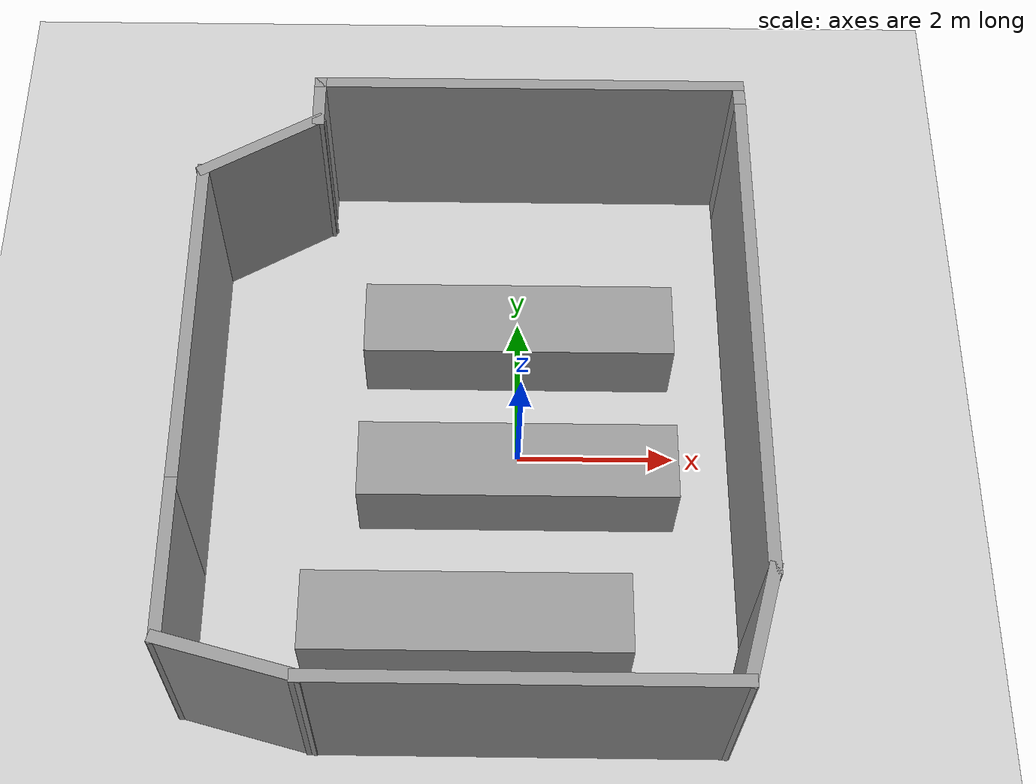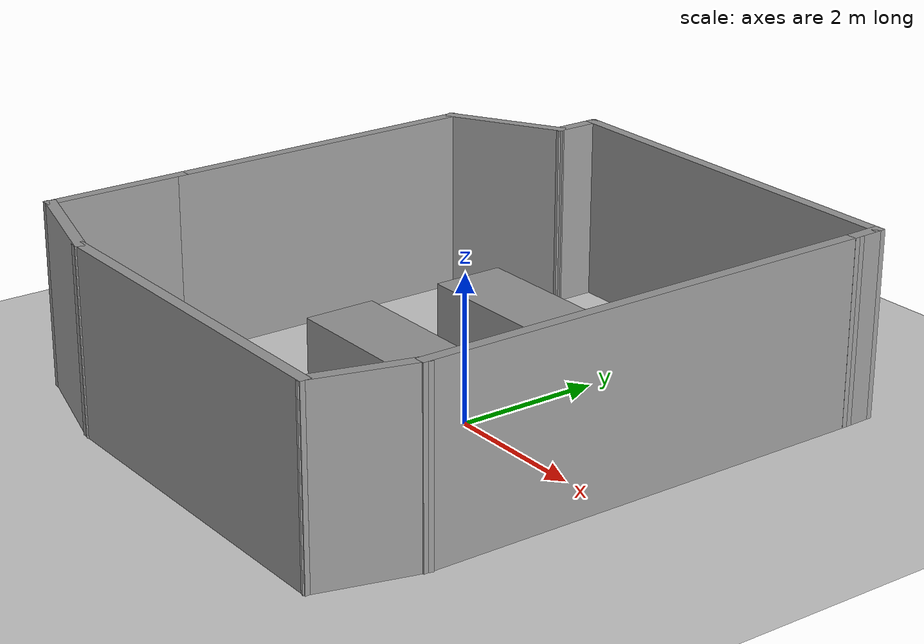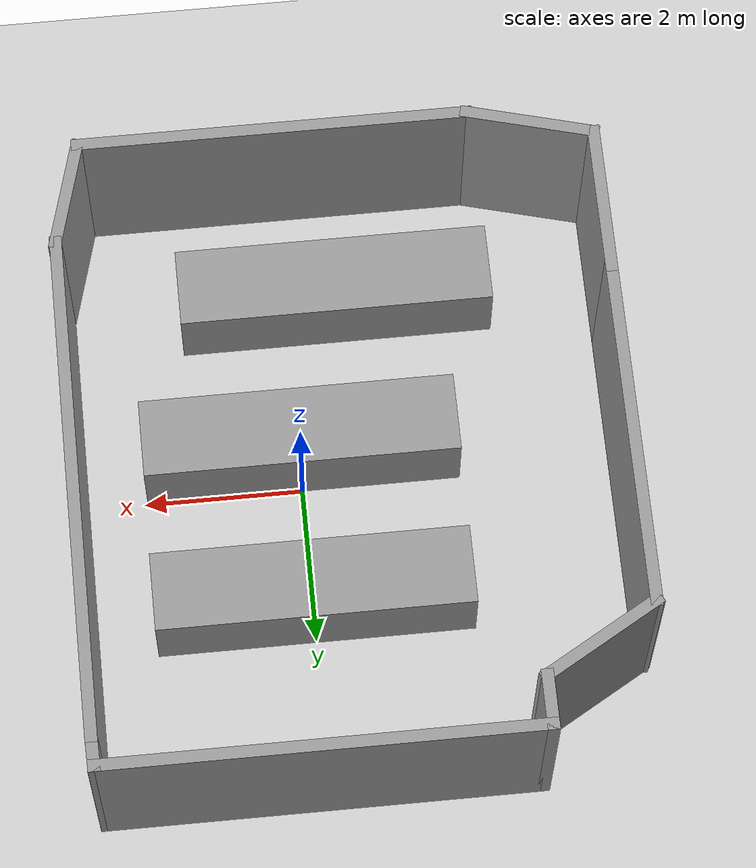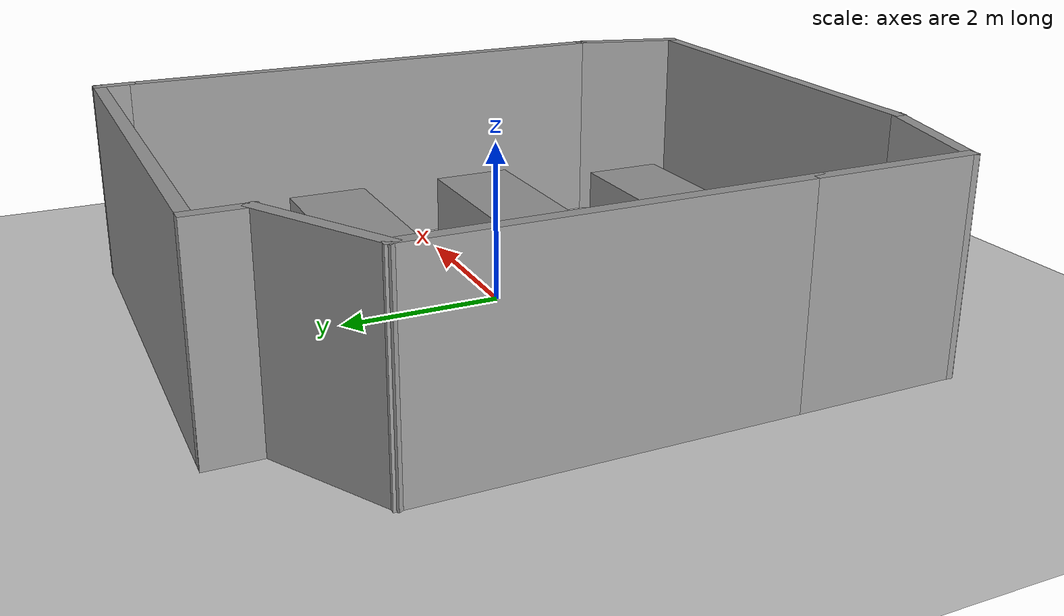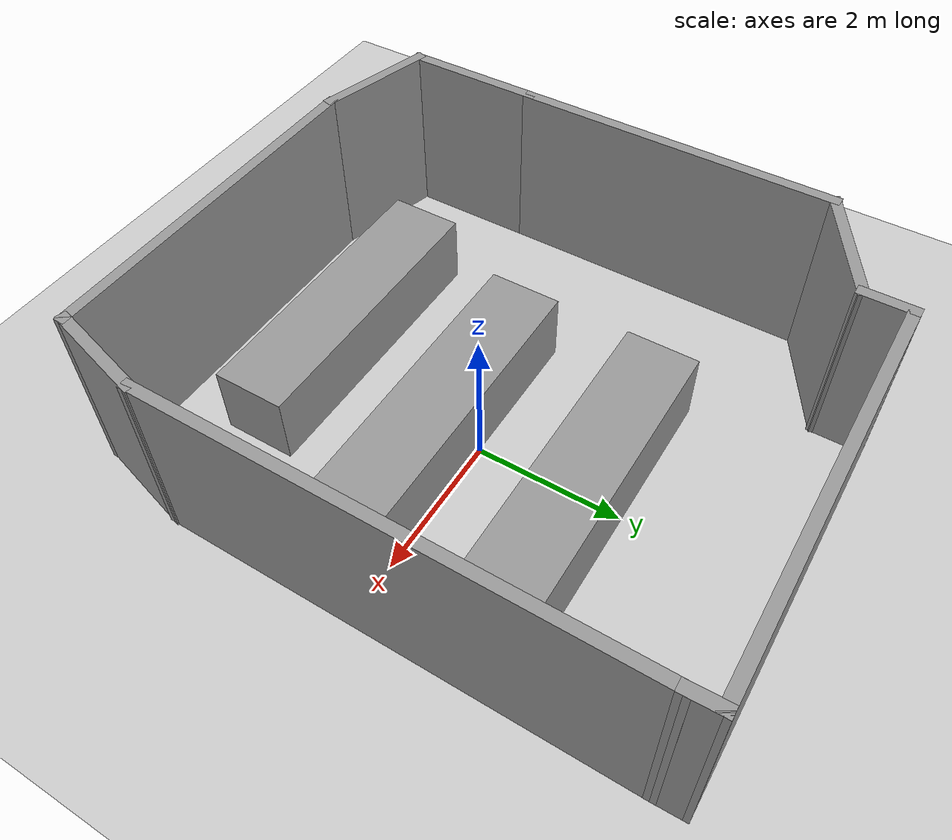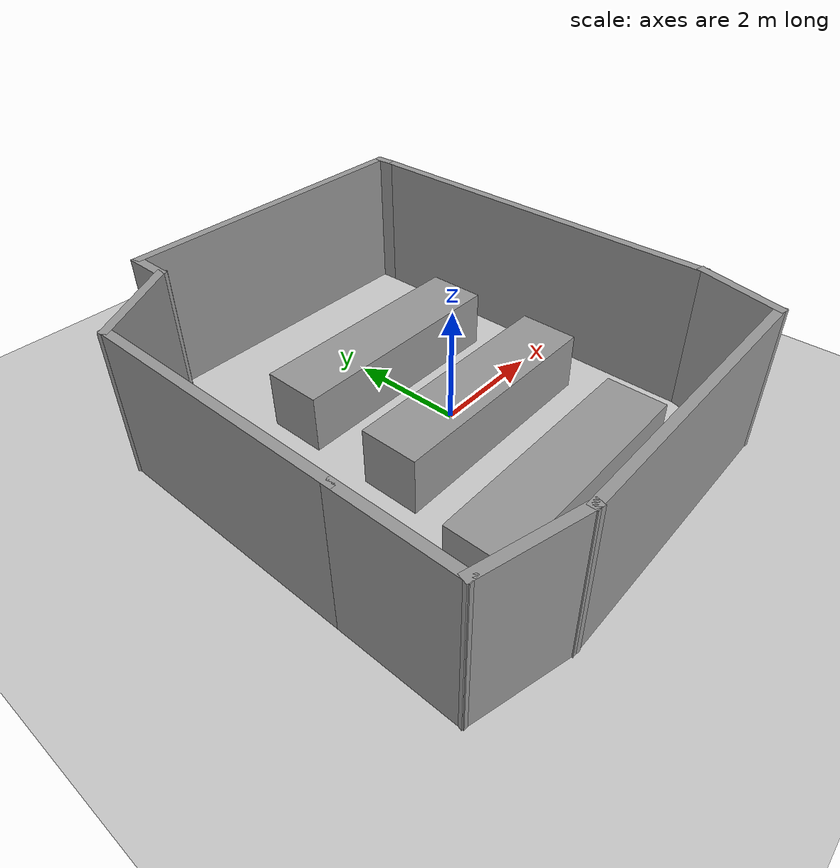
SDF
<sdf version="1.7">
 <world name="default">
  <light name="sun" type="directional">
   <pose>0 0 10 0 -0 0</pose>
   <diffuse>0.8 0.8 0.8 1</diffuse>
   <specular>0.2 0.2 0.2 1</specular>
   <attenuation>
    <range>1000</range>
    <constant>0.9</constant>
    <linear>0.01</linear>
    <quadratic>0.001</quadratic>
   </attenuation>
   <direction>-0.5 0.1 -0.9</direction>
   <spot><inner_angle>0</inner_angle><outer_angle>0</outer_angle><falloff>0</falloff></spot>
  </light>
  <model name="ground_plane">
   <static>1</static>
   <link name="link">
    <collision name="collision">
     <geometry><plane><normal>0 0 1</normal><size>100 100</size></plane></geometry>
     <surface>
      <contact><collide_bitmask>65535</collide_bitmask></contact>
      <friction><ode><mu>100</mu><mu2>50</mu2></ode></friction>
     </surface>
    </collision>
    <visual name="visual">
     <cast_shadows>0</cast_shadows>
     <geometry><plane><normal>0 0 1</normal><size>100 100</size></plane></geometry>
     <material>
      <script><uri>file://media/materials/scripts/gazebo.material</uri><name>Gazebo/Grey</name></script>
     </material>
    </visual>
   </link>
  </model>
  <gravity>0 0 -9.8</gravity>
  <magnetic_field>6e-06 2.3e-05 -4.2e-05</magnetic_field>
  <atmosphere type="adiabatic"/>
  <physics type="ode">
   <max_step_size>0.001</max_step_size>
   <real_time_factor>1</real_time_factor>
   <real_time_update_rate>1000</real_time_update_rate>
  </physics>
  <scene><ambient>0.4 0.4 0.4 1</ambient><background>0.7 0.7 0.7 1</background><shadows>1</shadows></scene>
  <spherical_coordinates>
   <surface_model>EARTH_WGS84</surface_model>
   <latitude_deg>0</latitude_deg>
   <longitude_deg>0</longitude_deg>
   <elevation>0</elevation>
   <heading_deg>0</heading_deg>
  </spherical_coordinates>
  <model name="newsupermarketwall">
   <pose>-0.602635 0.108369 0 0 -0 0</pose>
   <link name="Wall_0">
    <collision name="Wall_0_Collision">
     <geometry><box><size>5 0.15 2.5</size></box></geometry>
     <pose>0 0 1.25 0 -0 0</pose>
    </collision>
    <visual name="Wall_0_Visual">
     <pose>0 0 1.25 0 -0 0</pose>
     <geometry><box><size>5 0.15 2.5</size></box></geometry>
     <material>
      <script><uri>file://media/materials/scripts/gazebo.material</uri><name>Gazebo/Grey</name></script>
      <ambient>1 1 1 1</ambient>
     </material>
     <meta><layer>0</layer></meta>
    </visual>
    <pose>0.603336 -3.99958 0 0 -0 0</pose>
   </link>
   <link name="Wall_10">
    <collision name="Wall_10_Collision">
     <geometry><box><size>1.75 0.15 2.5</size></box></geometry>
     <pose>0 0 1.25 0 -0 0</pose>
    </collision>
    <visual name="Wall_10_Visual">
     <pose>0 0 1.25 0 -0 0</pose>
     <geometry><box><size>1.75 0.15 2.5</size></box></geometry>
     <material>
      <script><uri>file://media/materials/scripts/gazebo.material</uri><name>Gazebo/Grey</name></script>
      <ambient>1 1 1 1</ambient>
     </material>
     <meta><layer>0</layer></meta>
    </visual>
    <pose>-2.59441 -3.79252 0 0 -0 2.87979</pose>
   </link>
   <link name="Wall_11">
    <collision name="Wall_11_Collision">
     <geometry><box><size>2 0.15 2.5</size></box></geometry>
     <pose>0 0 1.25 0 -0 0</pose>
    </collision>
    <visual name="Wall_11_Visual">
     <pose>0 0 1.25 0 -0 0</pose>
     <geometry><box><size>2 0.15 2.5</size></box></geometry>
     <material>
      <script><uri>file://media/materials/scripts/gazebo.material</uri><name>Gazebo/Grey</name></script>
      <ambient>1 1 1 1</ambient>
     </material>
     <meta><layer>0</layer></meta>
    </visual>
    <pose>-3.36714 -2.66047 0 0 -0 1.5708</pose>
   </link>
   <link name="Wall_12">
    <collision name="Wall_12_Collision">
     <geometry><box><size>4.5 0.15 2.5</size></box></geometry>
     <pose>0 0 1.25 0 -0 0</pose>
    </collision>
    <visual name="Wall_12_Visual">
     <pose>0 0 1.25 0 -0 0</pose>
     <geometry><box><size>4.5 0.15 2.5</size></box></geometry>
     <material>
      <script><uri>file://media/materials/scripts/gazebo.material</uri><name>Gazebo/Grey</name></script>
      <ambient>1 1 1 1</ambient>
     </material>
     <meta><layer>0</layer></meta>
    </visual>
    <pose>-3.36714 0.439533 0 0 -0 1.5708</pose>
   </link>
   <link name="Wall_13">
    <collision name="Wall_13_Collision">
     <geometry><box><size>1.75 0.15 2.5</size></box></geometry>
     <pose>0 0 1.25 0 -0 0</pose>
    </collision>
    <visual name="Wall_13_Visual">
     <pose>0 0 1.25 0 -0 0</pose>
     <geometry><box><size>1.75 0.15 2.5</size></box></geometry>
     <material>
      <script><uri>file://media/materials/scripts/gazebo.material</uri><name>Gazebo/Grey</name></script>
      <ambient>1 1 1 1</ambient>
     </material>
     <meta><layer>0</layer></meta>
    </visual>
    <pose>-2.67433 3.01453 0 0 -0 0.523599</pose>
   </link>
   <link name="Wall_14">
    <collision name="Wall_14_Collision">
     <geometry><box><size>0.75 0.15 2.5</size></box></geometry>
     <pose>0 0 1.25 0 -0 0</pose>
    </collision>
    <visual name="Wall_14_Visual">
     <pose>0 0 1.25 0 -0 0</pose>
     <geometry><box><size>0.75 0.15 2.5</size></box></geometry>
     <material>
      <script><uri>file://media/materials/scripts/gazebo.material</uri><name>Gazebo/Grey</name></script>
      <ambient>1 1 1 1</ambient>
     </material>
     <meta><layer>0</layer></meta>
    </visual>
    <pose>-1.98151 3.71453 0 0 -0 1.5708</pose>
   </link>
   <link name="Wall_15">
    <collision name="Wall_15_Collision">
     <geometry><box><size>5.5 0.15 2.5</size></box></geometry>
     <pose>0 0 1.25 0 -0 0</pose>
    </collision>
    <visual name="Wall_15_Visual">
     <pose>0 0 1.25 0 -0 0</pose>
     <geometry><box><size>5.5 0.15 2.5</size></box></geometry>
     <material>
      <script><uri>file://media/materials/scripts/gazebo.material</uri><name>Gazebo/Grey</name></script>
      <ambient>1 1 1 1</ambient>
     </material>
     <meta><layer>0</layer></meta>
    </visual>
    <pose>0.693495 4.01453 0 0 -0 0</pose>
   </link>
   <link name="Wall_16">
    <collision name="Wall_16_Collision">
     <geometry><box><size>0.510229 0.15 2.5</size></box></geometry>
     <pose>0 0 1.25 0 -0 0</pose>
    </collision>
    <visual name="Wall_16_Visual">
     <pose>0 0 1.25 0 -0 0</pose>
     <geometry><box><size>0.510229 0.15 2.5</size></box></geometry>
     <material>
      <script><uri>file://media/materials/scripts/gazebo.material</uri><name>Gazebo/Grey</name></script>
      <ambient>1 1 1 1</ambient>
     </material>
     <meta><layer>0</layer></meta>
    </visual>
    <pose>3.37312 3.83448 0 0 -0 -1.54513</pose>
   </link>
   <link name="Wall_2">
    <collision name="Wall_2_Collision">
     <geometry><box><size>1.5 0.15 2.5</size></box></geometry>
     <pose>0 0 1.25 0 -0 0</pose>
    </collision>
    <visual name="Wall_2_Visual">
     <pose>0 0 1.25 0 -0 0</pose>
     <geometry><box><size>1.5 0.15 2.5</size></box></geometry>
     <material>
      <script><uri>file://media/materials/scripts/gazebo.material</uri><name>Gazebo/Grey</name></script>
      <ambient>1 1 1 1</ambient>
     </material>
     <meta><layer>0</layer></meta>
    </visual>
    <pose>3.20304 -3.34758 0 0 -0 1.309</pose>
   </link>
   <link name="Wall_3">
    <collision name="Wall_3_Collision">
     <geometry><box><size>6.5 0.15 2.5</size></box></geometry>
     <pose>0 0 1.25 0 -0 0</pose>
    </collision>
    <visual name="Wall_3_Visual">
     <pose>0 0 1.25 0 -0 0</pose>
     <geometry><box><size>6.5 0.15 2.5</size></box></geometry>
     <material>
      <script><uri>file://media/materials/scripts/gazebo.material</uri><name>Gazebo/Grey</name></script>
      <ambient>1 1 1 1</ambient>
     </material>
     <meta><layer>0</layer></meta>
    </visual>
    <pose>3.37774 0.479423 0 0 -0 1.5708</pose>
   </link>
   <static>1</static>
  </model>
  <model name="newshelf">
   <link name="link_0">
    <inertial>
     <mass>3.95578</mass>
     <inertia><ixx>0.659297</ixx><ixy>0</ixy><ixz>0</ixz><iyy>5.48803</iyy><iyz>0</iyz><izz>5.48803</izz></inertia>
    </inertial>
    <pose>0.213201 2.02357 0 0 -0 0</pose>
    <visual name="visual">
     <geometry><box><size>3.95577 1 1</size></box></geometry>
     <material>
      <lighting>1</lighting>
      <script><uri>file://media/materials/scripts/gazebo.material</uri><name>Gazebo/Grey</name></script>
      <shader type="pixel"/>
     </material>
    </visual>
    <collision name="collision">
     <geometry><box><size>3.95577 1 1</size></box></geometry>
     <surface>
      <friction>
       <ode><mu>1</mu><mu2>1</mu2><fdir1>0 0 0</fdir1><slip1>0</slip1><slip2>0</slip2></ode>
       <torsional>
        <coefficient>1</coefficient>
        <patch_radius>0</patch_radius>
        <surface_radius>0</surface_radius>
        <use_patch_radius>1</use_patch_radius>
        <ode><slip>0</slip></ode>
       </torsional>
      </friction>
      <bounce><restitution_coefficient>0</restitution_coefficient><threshold>1e+06</threshold></bounce>
      <contact>
       <collide_without_contact>0</collide_without_contact>
       <collide_without_contact_bitmask>1</collide_without_contact_bitmask>
       <collide_bitmask>1</collide_bitmask>
       <ode>
        <soft_cfm>0</soft_cfm>
        <soft_erp>0.2</soft_erp>
        <kp>1e+13</kp>
        <kd>1</kd>
        <max_vel>0.01</max_vel>
        <min_depth>0</min_depth>
       </ode>
       <bullet>
        <split_impulse>1</split_impulse>
        <split_impulse_penetration_threshold>-0.01</split_impulse_penetration_threshold>
        <soft_cfm>0</soft_cfm>
        <soft_erp>0.2</soft_erp>
        <kp>1e+13</kp>
        <kd>1</kd>
       </bullet>
      </contact>
     </surface>
    </collision>
   </link>
   <link name="link_0_clone">
    <inertial>
     <mass>3.95578</mass>
     <inertia><ixx>0.659297</ixx><ixy>0</ixy><ixz>0</ixz><iyy>5.48803</iyy><iyz>0</iyz><izz>5.48803</izz></inertia>
    </inertial>
    <pose>0.201043 -0.007304 0 0 -0 0</pose>
    <visual name="visual">
     <geometry><box><size>3.95577 1 1</size></box></geometry>
     <material>
      <lighting>1</lighting>
      <script><uri>file://media/materials/scripts/gazebo.material</uri><name>Gazebo/Grey</name></script>
      <shader type="pixel"/>
     </material>
    </visual>
    <collision name="collision">
     <geometry><box><size>3.95577 1 1</size></box></geometry>
     <surface>
      <friction>
       <ode><mu>1</mu><mu2>1</mu2><fdir1>0 0 0</fdir1><slip1>0</slip1><slip2>0</slip2></ode>
       <torsional>
        <coefficient>1</coefficient>
        <patch_radius>0</patch_radius>
        <surface_radius>0</surface_radius>
        <use_patch_radius>1</use_patch_radius>
        <ode><slip>0</slip></ode>
       </torsional>
      </friction>
      <bounce><restitution_coefficient>0</restitution_coefficient><threshold>1e+06</threshold></bounce>
      <contact>
       <collide_without_contact>0</collide_without_contact>
       <collide_without_contact_bitmask>1</collide_without_contact_bitmask>
       <collide_bitmask>1</collide_bitmask>
       <ode>
        <soft_cfm>0</soft_cfm>
        <soft_erp>0.2</soft_erp>
        <kp>1e+13</kp>
        <kd>1</kd>
        <max_vel>0.01</max_vel>
        <min_depth>0</min_depth>
       </ode>
       <bullet>
        <split_impulse>1</split_impulse>
        <split_impulse_penetration_threshold>-0.01</split_impulse_penetration_threshold>
        <soft_cfm>0</soft_cfm>
        <soft_erp>0.2</soft_erp>
        <kp>1e+13</kp>
        <kd>1</kd>
       </bullet>
      </contact>
     </surface>
    </collision>
   </link>
   <link name="link_0_clone_0">
    <inertial>
     <mass>3.95578</mass>
     <inertia><ixx>0.659297</ixx><ixy>0</ixy><ixz>0</ixz><iyy>5.48803</iyy><iyz>0</iyz><izz>5.48803</izz></inertia>
    </inertial>
    <pose>-0.414244 -2.01627 0 0 -0 0</pose>
    <visual name="visual">
     <geometry><box><size>3.95577 1 1</size></box></geometry>
     <material>
      <lighting>1</lighting>
      <script><uri>file://media/materials/scripts/gazebo.material</uri><name>Gazebo/Grey</name></script>
      <shader type="pixel"/>
     </material>
    </visual>
    <collision name="collision">
     <geometry><box><size>3.95577 1 1</size></box></geometry>
     <surface>
      <friction>
       <ode><mu>1</mu><mu2>1</mu2><fdir1>0 0 0</fdir1><slip1>0</slip1><slip2>0</slip2></ode>
       <torsional>
        <coefficient>1</coefficient>
        <patch_radius>0</patch_radius>
        <surface_radius>0</surface_radius>
        <use_patch_radius>1</use_patch_radius>
        <ode><slip>0</slip></ode>
       </torsional>
      </friction>
      <bounce><restitution_coefficient>0</restitution_coefficient><threshold>1e+06</threshold></bounce>
      <contact>
       <collide_without_contact>0</collide_without_contact>
       <collide_without_contact_bitmask>1</collide_without_contact_bitmask>
       <collide_bitmask>1</collide_bitmask>
       <ode>
        <soft_cfm>0</soft_cfm>
        <soft_erp>0.2</soft_erp>
        <kp>1e+13</kp>
        <kd>1</kd>
        <max_vel>0.01</max_vel>
        <min_depth>0</min_depth>
       </ode>
       <bullet>
        <split_impulse>1</split_impulse>
        <split_impulse_penetration_threshold>-0.01</split_impulse_penetration_threshold>
        <soft_cfm>0</soft_cfm>
        <soft_erp>0.2</soft_erp>
        <kp>1e+13</kp>
        <kd>1</kd>
       </bullet>
      </contact>
     </surface>
    </collision>
   </link>
   <static>0</static>
   <pose>-0.219442 -0.502792 0.5 0 -0 0</pose>
  </model>
 </world>
</sdf>
